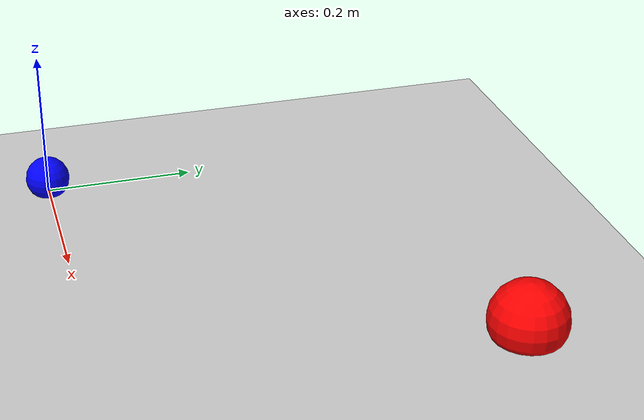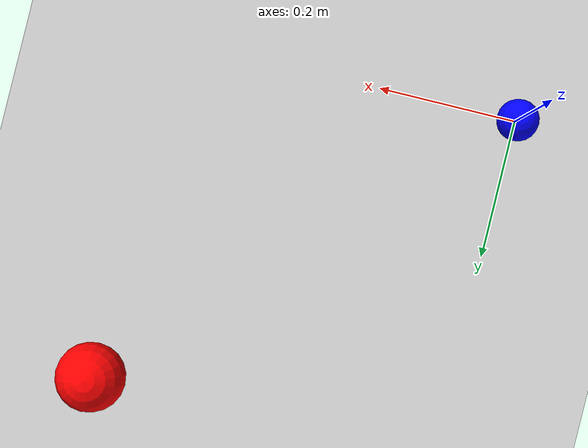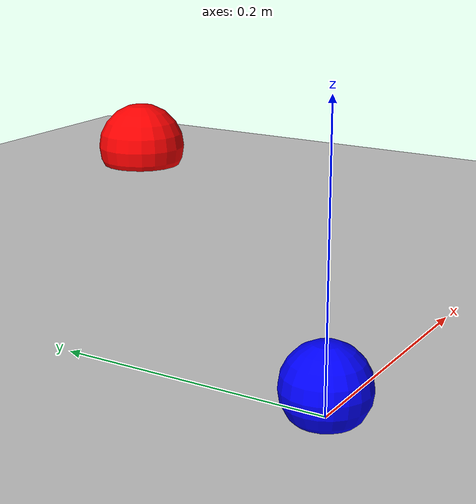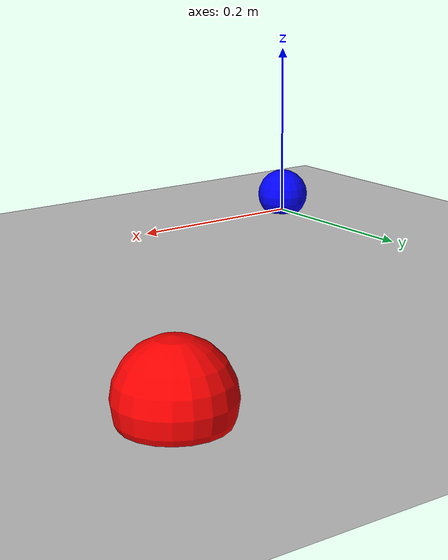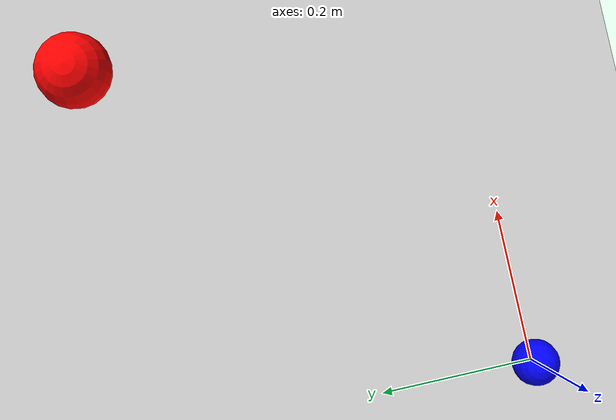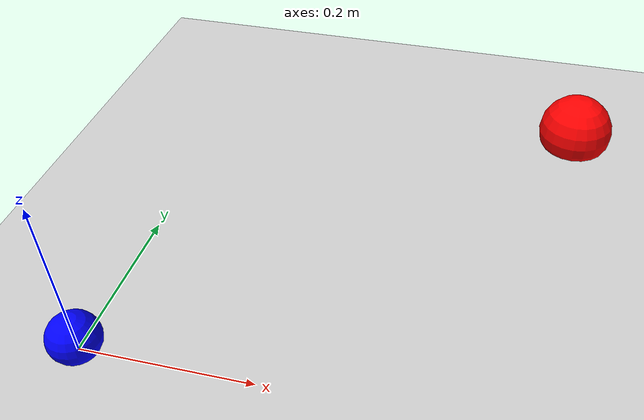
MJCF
<mujoco model="point_maze">
  <option gravity="0 0 0"/>
  <worldbody>
    <light name="light" pos="0 0 1.5"/>
    <geom name="floor" type="plane" size="1 1 0.1" rgba="0.8 0.8 0.8 1"/>
    <geom name="target" type="sphere" pos="0.5 0.5 0.02" size="0.05" rgba="1 0 0 1"/>
    <body name="point" pos="0 0 0.02">
      <joint name="x" type="slide" axis="1 0 0"/>
      <joint name="y" type="slide" axis="0 1 0"/>
      <geom name="point_geom" type="sphere" size="0.03" rgba="0 0 1 1" group="0"/>
    </body>
  </worldbody>
  <actuator>
    <motor name="x_motor" joint="x" gear="1"/>
    <motor name="y_motor" joint="y" gear="1"/>
  </actuator>
</mujoco>
